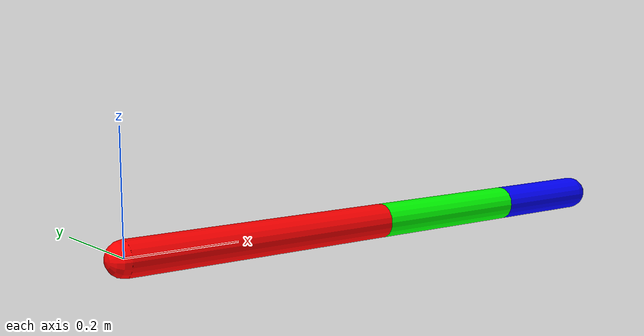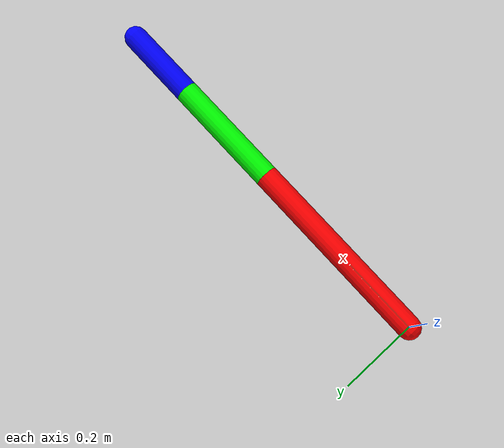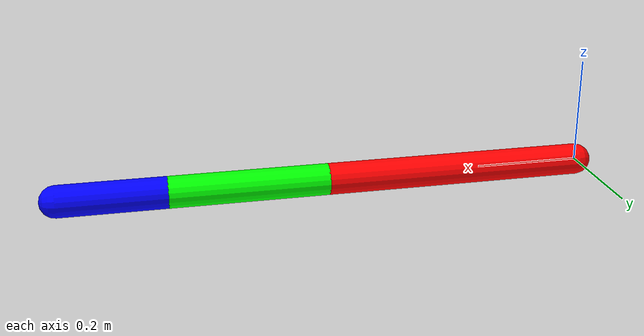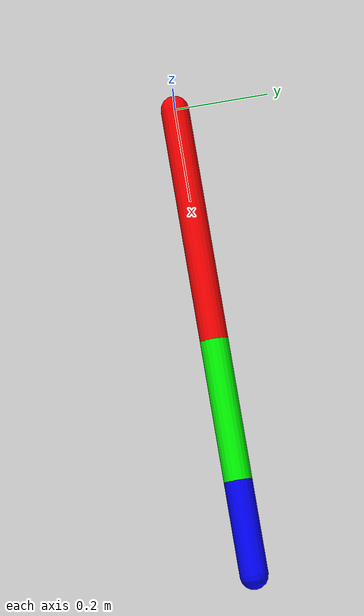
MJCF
<mujoco model="arm3dof">

    <option gravity="0 0 0"/>

    <worldbody>

        <body name="link1" pos="0 0 0">

            <joint
                name="joint1"
                type="hinge"
                axis="0 0 1"/>

            <geom
                type="capsule"
                fromto="0 0 0 0.5 0 0"
                size="0.03"
                rgba="1 0 0 1"/>

            <body name="link2" pos="0.5 0 0">

                <joint
                    name="joint2"
                    type="hinge"
                    axis="0 0 1"/>

                <geom
                    type="capsule"
                    fromto="0 0 0 0.3 0 0"
                    size="0.03"
                    rgba="0 1 0 1"/>

                <body name="link3" pos="0.3 0 0">

                    <joint
                        name="joint3"
                        type="hinge"
                        axis="0 0 1"/>

                    <geom
                        type="capsule"
                        fromto="0 0 0 0.2 0 0"
                        size="0.03"
                        rgba="0 0 1 1"/>

                    <site
                        name="ee"
                        pos="0.2 0 0"
                        size="0.02"/>

                </body>

            </body>

        </body>

    </worldbody>

    <actuator>

        <motor
            joint="joint1"
            ctrlrange="-100 100"
            gear="1"/>

        <motor
            joint="joint2"
            ctrlrange="-100 100"
            gear="1"/>

        <motor
            joint="joint3"
            ctrlrange="-100 100"
            gear="1"/>

    </actuator>

</mujoco>
